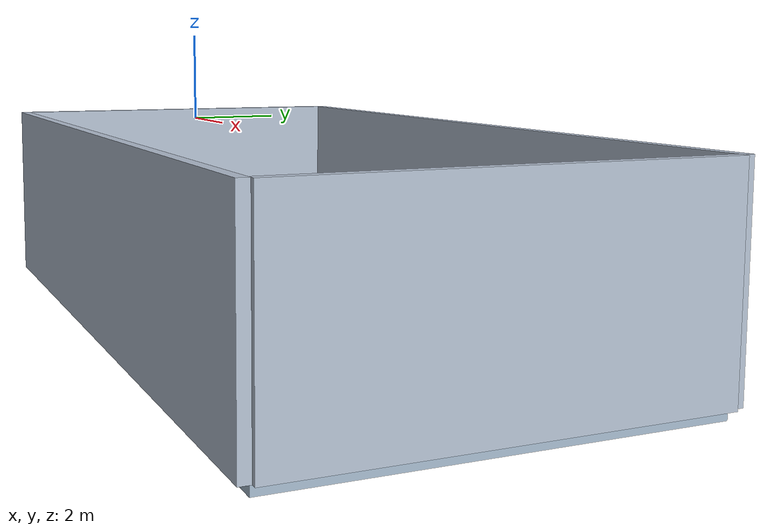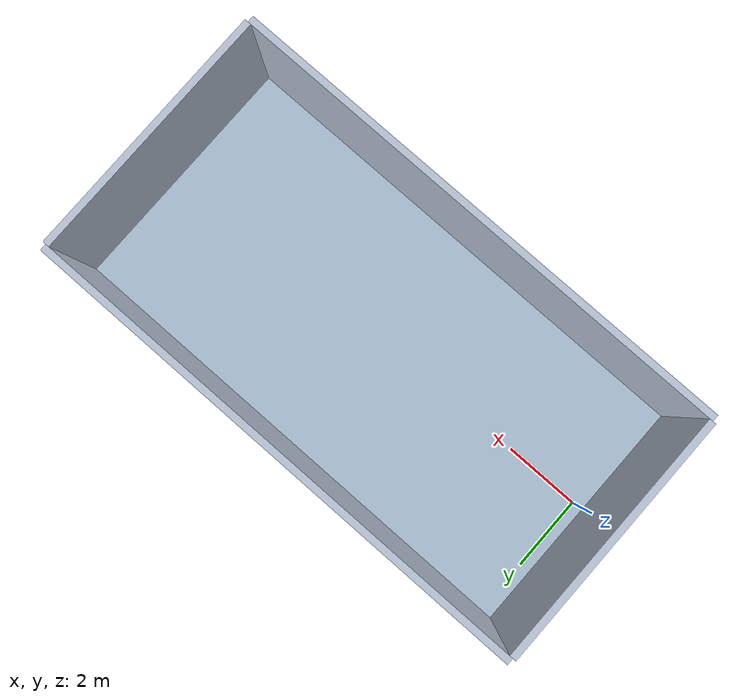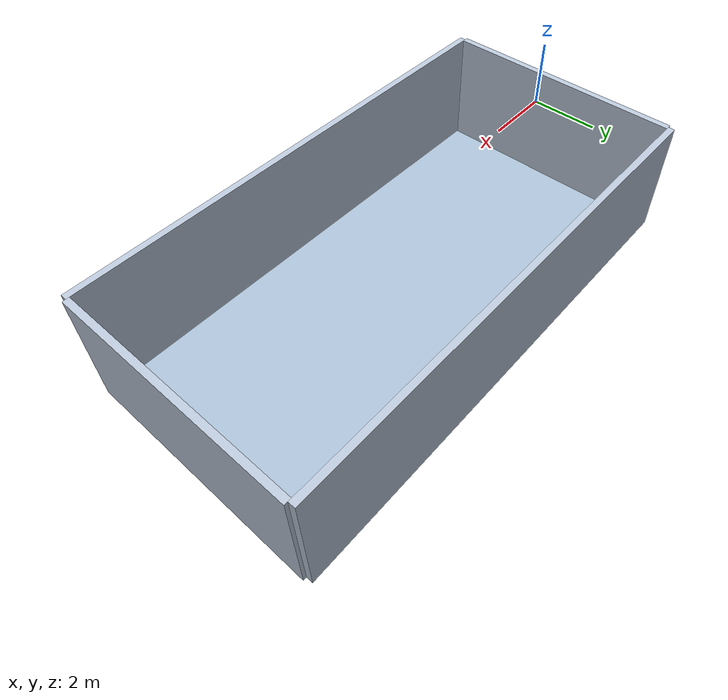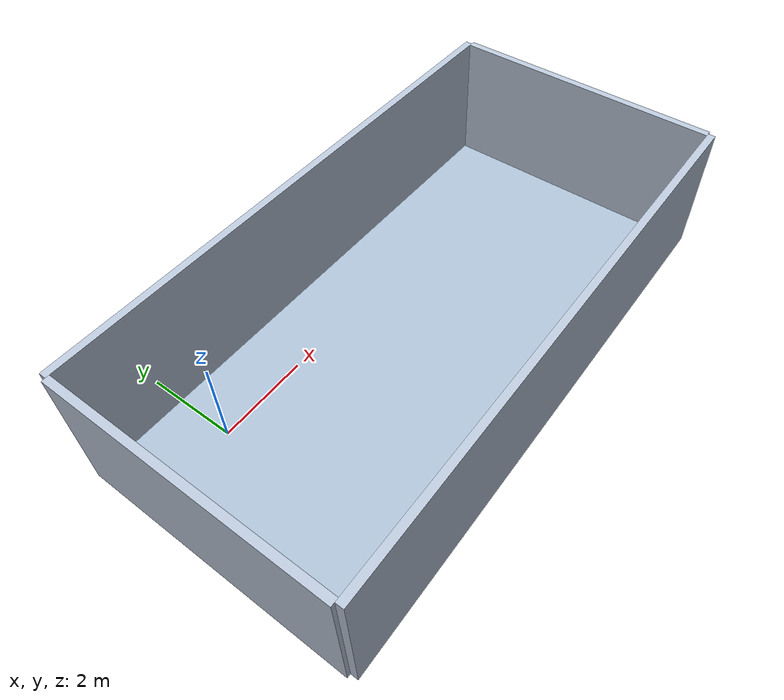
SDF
<?xml version="1.0" ?>
<sdf version="1.6">
  <model name="tank">
    <static>true</static>
    <link name="tank_floor_link">
      <pose>6.42 0.0 -3.76 0 0 0</pose>
      <collision name="floor_collision">
        <geometry>
          <box>
            <size>15.24 7.62 0.2</size>
          </box>
        </geometry>
      </collision>
      <visual name="floor_visual">
        <geometry>
          <box>
            <size>15.24 7.62 0.2</size>
          </box>
        </geometry>
        <material>
          <ambient>0.58 0.66 0.74 1</ambient>
          <diffuse>0.66 0.74 0.82 1</diffuse>
        </material>
      </visual>
    </link>
    <link name="tank_wall_north_link">
      <pose>6.42 3.91 -1.755 0 0 0</pose>
      <collision name="wall_collision">
        <geometry>
          <box>
            <size>15.44 0.20 3.81</size>
          </box>
        </geometry>
      </collision>
      <visual name="wall_visual">
        <geometry>
          <box>
            <size>15.44 0.20 3.81</size>
          </box>
        </geometry>
        <material>
          <ambient>0.62 0.67 0.74 1</ambient>
          <diffuse>0.72 0.77 0.84 1</diffuse>
        </material>
      </visual>
    </link>
    <link name="tank_wall_south_link">
      <pose>6.42 -3.91 -1.755 0 0 0</pose>
      <collision name="wall_collision">
        <geometry>
          <box>
            <size>15.44 0.20 3.81</size>
          </box>
        </geometry>
      </collision>
      <visual name="wall_visual">
        <geometry>
          <box>
            <size>15.44 0.20 3.81</size>
          </box>
        </geometry>
        <material>
          <ambient>0.62 0.67 0.74 1</ambient>
          <diffuse>0.72 0.77 0.84 1</diffuse>
        </material>
      </visual>
    </link>
    <link name="tank_wall_east_link">
      <pose>14.14 0.0 -1.755 0 0 0</pose>
      <collision name="wall_collision">
        <geometry>
          <box>
            <size>0.20 7.62 3.81</size>
          </box>
        </geometry>
      </collision>
      <visual name="wall_visual">
        <geometry>
          <box>
            <size>0.20 7.62 3.81</size>
          </box>
        </geometry>
        <material>
          <ambient>0.62 0.67 0.74 1</ambient>
          <diffuse>0.72 0.77 0.84 1</diffuse>
        </material>
      </visual>
    </link>
    <link name="tank_wall_west_link">
      <pose>-1.30 0.0 -1.755 0 0 0</pose>
      <collision name="wall_collision">
        <geometry>
          <box>
            <size>0.20 7.62 3.81</size>
          </box>
        </geometry>
      </collision>
      <visual name="wall_visual">
        <geometry>
          <box>
            <size>0.20 7.62 3.81</size>
          </box>
        </geometry>
        <material>
          <ambient>0.62 0.67 0.74 1</ambient>
          <diffuse>0.72 0.77 0.84 1</diffuse>
        </material>
      </visual>
    </link>
  </model>
</sdf>
